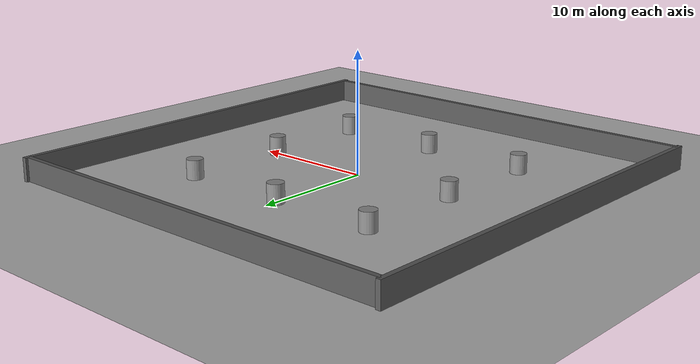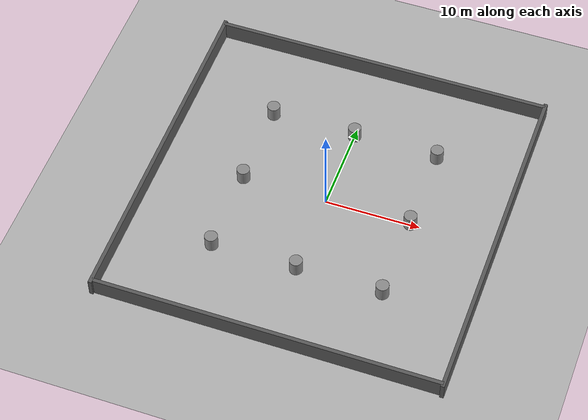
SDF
<?xml version="1.0" ?>
<sdf version="1.6">
  <world name="warthog_world">
    <gravity>0 0 -9.8</gravity>

    <light name="sun" type="directional">
      <cast_shadows>true</cast_shadows>
      <pose>0 0 20 0 0 0</pose>
      <diffuse>0.8 0.8 0.8 1</diffuse>
      <specular>0.2 0.2 0.2 1</specular>
      <attenuation>
        <range>1000</range>
        <constant>0.9</constant>
        <linear>0.01</linear>
        <quadratic>0.001</quadratic>
      </attenuation>
      <direction>-0.5 0.1 -0.9</direction>
    </light>

    <model name="ground_plane">
      <static>true</static>
      <link name="link">
        <collision name="collision">
          <geometry>
            <plane>
              <normal>0 0 1</normal>
              <size>100 100</size>
            </plane>
          </geometry>
          <surface>
            <friction>
              <ode>
                <mu>100</mu>
                <mu2>50</mu2>
              </ode>
            </friction>
          </surface>
        </collision>
        <visual name="visual">
          <cast_shadows>false</cast_shadows>
          <geometry>
            <plane>
              <normal>0 0 1</normal>
              <size>100 100</size>
            </plane>
          </geometry>
          <material>
            <ambient>0.7 0.7 0.7 1</ambient>
            <diffuse>0.7 0.7 0.7 1</diffuse>
          </material>
        </visual>
      </link>
    </model>

    <physics name="default_physics" default="true" type="ode">
      <max_step_size>0.01</max_step_size>
      <real_time_factor>1</real_time_factor>
      <real_time_update_rate>100</real_time_update_rate>
    </physics>

    <scene>
      <ambient>0.4 0.4 0.4 1</ambient>
      <background>0.85 0.85 0.85 1</background>
      <shadows>true</shadows>
    </scene>

    <model name="north_wall">
      <static>true</static>
      <pose>0 18 0.975 0 0 0</pose>
      <link name="link">
        <collision name="collision">
          <geometry>
            <box>
              <size>36 0.4 1.95</size>
            </box>
          </geometry>
        </collision>
        <visual name="visual">
          <geometry>
            <box>
              <size>36 0.4 1.95</size>
            </box>
          </geometry>
          <material>
            <ambient>0.35 0.35 0.35 1</ambient>
            <diffuse>0.35 0.35 0.35 1</diffuse>
          </material>
        </visual>
      </link>
    </model>

    <model name="south_wall">
      <static>true</static>
      <pose>0 -18 0.975 0 0 0</pose>
      <link name="link">
        <collision name="collision">
          <geometry>
            <box>
              <size>36 0.4 1.95</size>
            </box>
          </geometry>
        </collision>
        <visual name="visual">
          <geometry>
            <box>
              <size>36 0.4 1.95</size>
            </box>
          </geometry>
          <material>
            <ambient>0.35 0.35 0.35 1</ambient>
            <diffuse>0.35 0.35 0.35 1</diffuse>
          </material>
        </visual>
      </link>
    </model>

    <model name="east_wall">
      <static>true</static>
      <pose>18 0 0.975 0 0 0</pose>
      <link name="link">
        <collision name="collision">
          <geometry>
            <box>
              <size>0.4 36.8 1.95</size>
            </box>
          </geometry>
        </collision>
        <visual name="visual">
          <geometry>
            <box>
              <size>0.4 36.8 1.95</size>
            </box>
          </geometry>
          <material>
            <ambient>0.35 0.35 0.35 1</ambient>
            <diffuse>0.35 0.35 0.35 1</diffuse>
          </material>
        </visual>
      </link>
    </model>

    <model name="west_wall">
      <static>true</static>
      <pose>-18 0 0.975 0 0 0</pose>
      <link name="link">
        <collision name="collision">
          <geometry>
            <box>
              <size>0.4 36.8 1.95</size>
            </box>
          </geometry>
        </collision>
        <visual name="visual">
          <geometry>
            <box>
              <size>0.4 36.8 1.95</size>
            </box>
          </geometry>
          <material>
            <ambient>0.35 0.35 0.35 1</ambient>
            <diffuse>0.35 0.35 0.35 1</diffuse>
          </material>
        </visual>
      </link>
    </model>

    <model name="north_mid_cylinder">
      <static>true</static>
      <pose>0 9 0.8 0 0 0</pose>
      <link name="link">
        <collision name="collision">
          <geometry>
            <cylinder>
              <radius>0.675</radius>
              <length>1.6</length>
            </cylinder>
          </geometry>
        </collision>
        <visual name="visual">
          <geometry>
            <cylinder>
              <radius>0.675</radius>
              <length>1.6</length>
            </cylinder>
          </geometry>
          <material>
            <ambient>0.55 0.55 0.55 1</ambient>
            <diffuse>0.55 0.55 0.55 1</diffuse>
          </material>
        </visual>
      </link>
    </model>

    <model name="south_mid_cylinder">
      <static>true</static>
      <pose>0 -9 0.8 0 0 0</pose>
      <link name="link">
        <collision name="collision">
          <geometry>
            <cylinder>
              <radius>0.675</radius>
              <length>1.6</length>
            </cylinder>
          </geometry>
        </collision>
        <visual name="visual">
          <geometry>
            <cylinder>
              <radius>0.675</radius>
              <length>1.6</length>
            </cylinder>
          </geometry>
          <material>
            <ambient>0.55 0.55 0.55 1</ambient>
            <diffuse>0.55 0.55 0.55 1</diffuse>
          </material>
        </visual>
      </link>
    </model>

    <model name="east_mid_cylinder">
      <static>true</static>
      <pose>9 0 0.8 0 0 0</pose>
      <link name="link">
        <collision name="collision">
          <geometry>
            <cylinder>
              <radius>0.675</radius>
              <length>1.6</length>
            </cylinder>
          </geometry>
        </collision>
        <visual name="visual">
          <geometry>
            <cylinder>
              <radius>0.675</radius>
              <length>1.6</length>
            </cylinder>
          </geometry>
          <material>
            <ambient>0.55 0.55 0.55 1</ambient>
            <diffuse>0.55 0.55 0.55 1</diffuse>
          </material>
        </visual>
      </link>
    </model>

    <model name="west_mid_cylinder">
      <static>true</static>
      <pose>-9 0 0.8 0 0 0</pose>
      <link name="link">
        <collision name="collision">
          <geometry>
            <cylinder>
              <radius>0.675</radius>
              <length>1.6</length>
            </cylinder>
          </geometry>
        </collision>
        <visual name="visual">
          <geometry>
            <cylinder>
              <radius>0.675</radius>
              <length>1.6</length>
            </cylinder>
          </geometry>
          <material>
            <ambient>0.55 0.55 0.55 1</ambient>
            <diffuse>0.55 0.55 0.55 1</diffuse>
          </material>
        </visual>
      </link>
    </model>

    <model name="north_east_corner_cylinder">
      <static>true</static>
      <pose>9 9 0.8 0 0 0</pose>
      <link name="link">
        <collision name="collision">
          <geometry>
            <cylinder>
              <radius>0.675</radius>
              <length>1.6</length>
            </cylinder>
          </geometry>
        </collision>
        <visual name="visual">
          <geometry>
            <cylinder>
              <radius>0.675</radius>
              <length>1.6</length>
            </cylinder>
          </geometry>
          <material>
            <ambient>0.55 0.55 0.55 1</ambient>
            <diffuse>0.55 0.55 0.55 1</diffuse>
          </material>
        </visual>
      </link>
    </model>

    <model name="north_west_corner_cylinder">
      <static>true</static>
      <pose>-9 9 0.8 0 0 0</pose>
      <link name="link">
        <collision name="collision">
          <geometry>
            <cylinder>
              <radius>0.675</radius>
              <length>1.6</length>
            </cylinder>
          </geometry>
        </collision>
        <visual name="visual">
          <geometry>
            <cylinder>
              <radius>0.675</radius>
              <length>1.6</length>
            </cylinder>
          </geometry>
          <material>
            <ambient>0.55 0.55 0.55 1</ambient>
            <diffuse>0.55 0.55 0.55 1</diffuse>
          </material>
        </visual>
      </link>
    </model>

    <model name="south_east_corner_cylinder">
      <static>true</static>
      <pose>9 -9 0.8 0 0 0</pose>
      <link name="link">
        <collision name="collision">
          <geometry>
            <cylinder>
              <radius>0.675</radius>
              <length>1.6</length>
            </cylinder>
          </geometry>
        </collision>
        <visual name="visual">
          <geometry>
            <cylinder>
              <radius>0.675</radius>
              <length>1.6</length>
            </cylinder>
          </geometry>
          <material>
            <ambient>0.55 0.55 0.55 1</ambient>
            <diffuse>0.55 0.55 0.55 1</diffuse>
          </material>
        </visual>
      </link>
    </model>

    <model name="south_west_corner_cylinder">
      <static>true</static>
      <pose>-9 -9 0.8 0 0 0</pose>
      <link name="link">
        <collision name="collision">
          <geometry>
            <cylinder>
              <radius>0.675</radius>
              <length>1.6</length>
            </cylinder>
          </geometry>
        </collision>
        <visual name="visual">
          <geometry>
            <cylinder>
              <radius>0.675</radius>
              <length>1.6</length>
            </cylinder>
          </geometry>
          <material>
            <ambient>0.55 0.55 0.55 1</ambient>
            <diffuse>0.55 0.55 0.55 1</diffuse>
          </material>
        </visual>
      </link>
    </model>
  </world>
</sdf>
